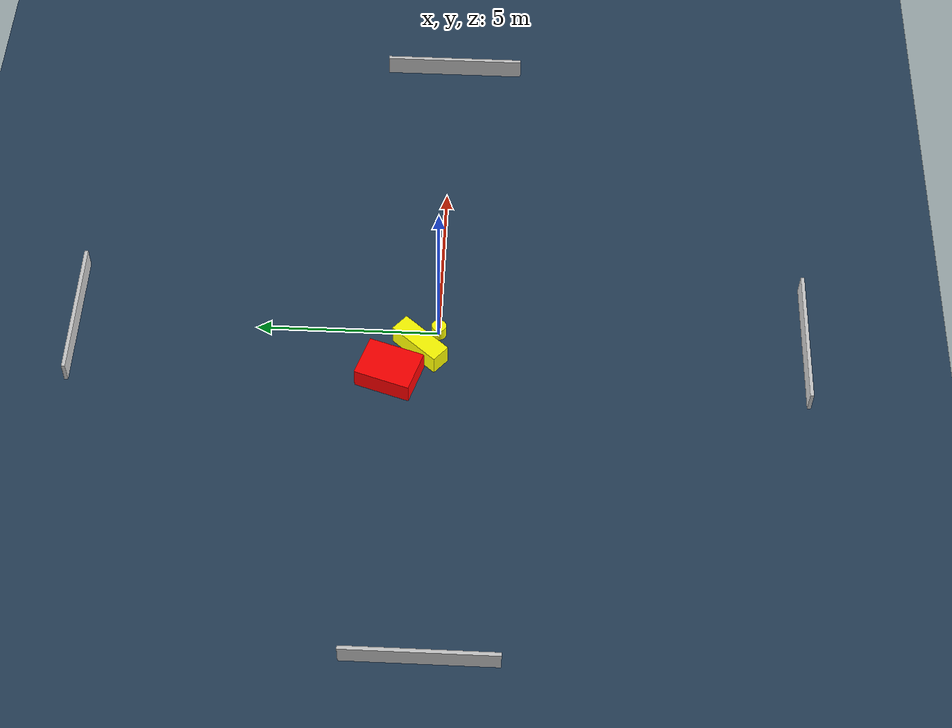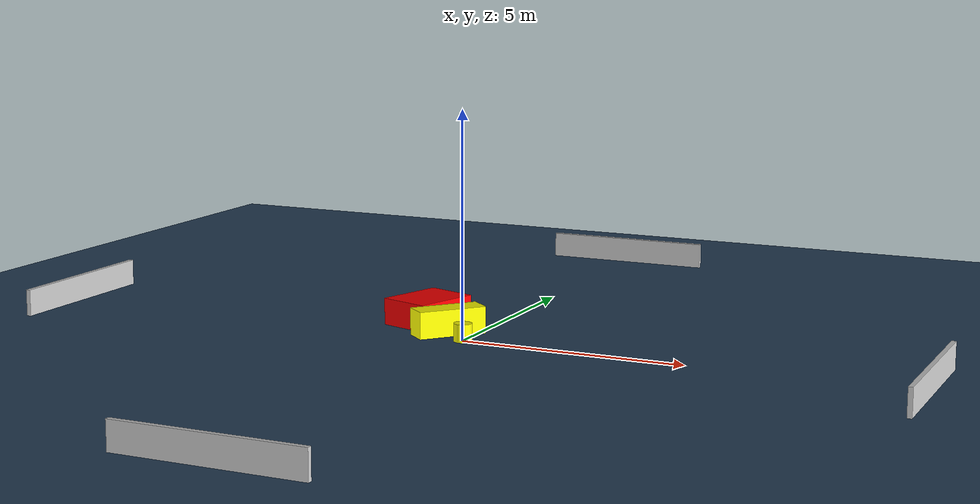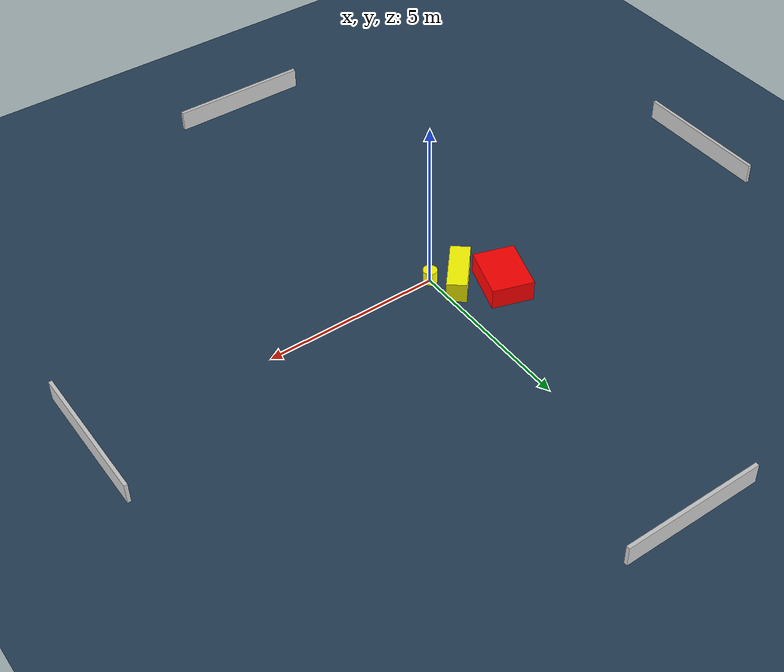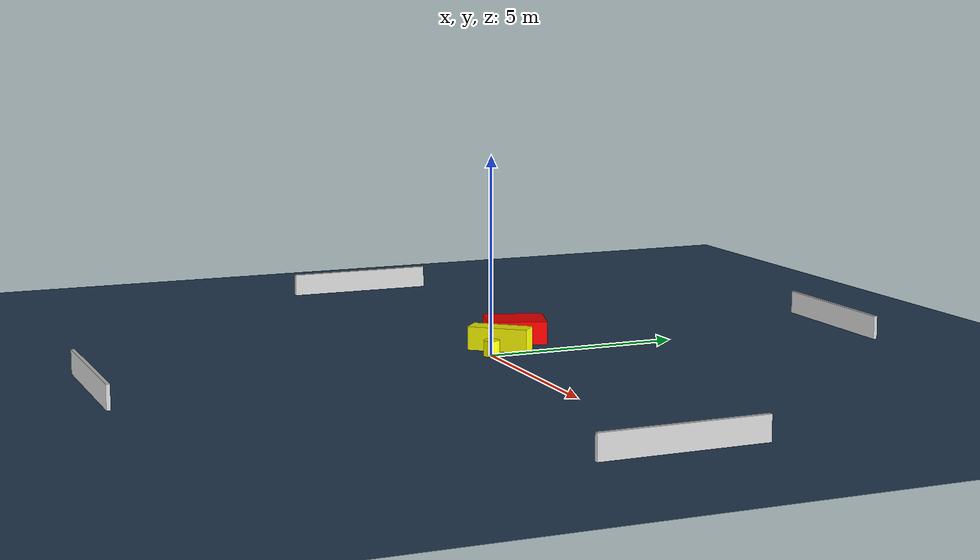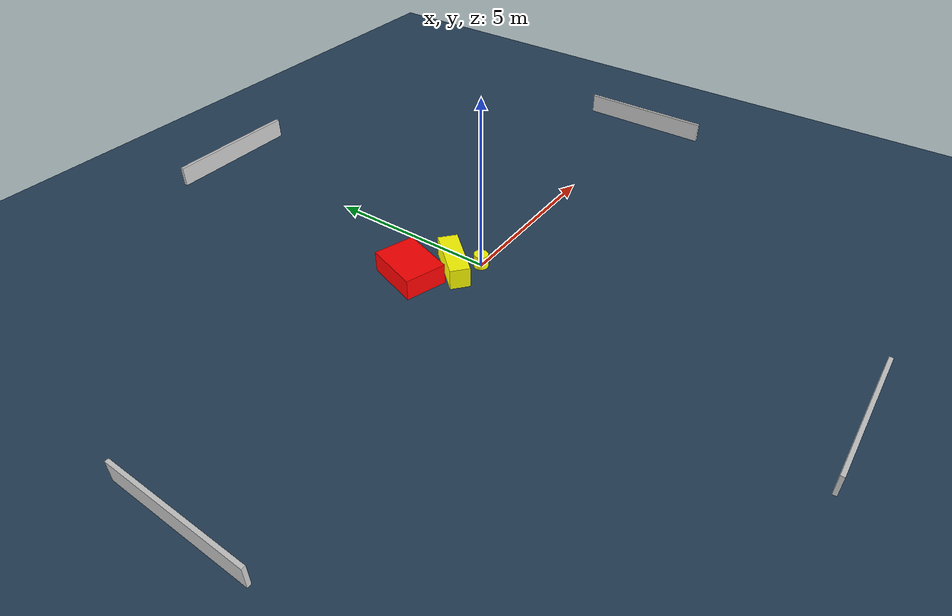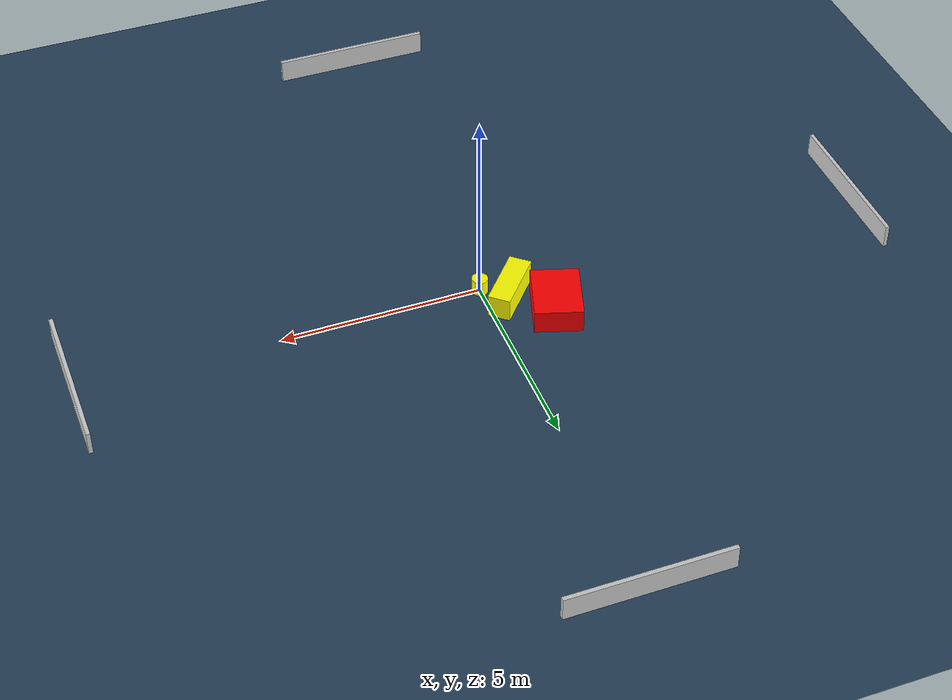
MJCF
<?xml version="1.0" ?>
<mujoco model="generated_environment">
  <option timestep="0.01" integrator="RK4" cone="elliptic"/>
  <default>
    <geom density="1"/>
  </default>
  <asset>
    <texture builtin="gradient" height="3072" name="skybox" rgb1="0.3 0.5 0.7" rgb2="0 0 0" type="skybox" width="512"/>
    <texture builtin="checker" height="300" name="groundplane" rgb1="0.2 0.3 0.4" rgb2="0.1 0.2 0.3" type="2d" width="300"/>
    <material name="groundplane" reflectance="0.2" texrepeat="5 5" texture="groundplane"/>
  </asset>
  <worldbody>
    <light dir="0 0 -1" directional="true" pos="0 0 1.5"/>
    <geom condim="3" friction="0.5 0.005 0.001" material="groundplane" name="floor" pos="0 0 0" size="0 0 0.05" type="plane"/>
    <body name="walls">
      <geom name="wall_1" condim="4" pos="-10.0 0.0 0.3" rgba="0.800000011920929 0.800000011920929 0.800000011920929 1.0" size="0.05 2.0 0.3" type="box"/>
      <geom name="wall_2" condim="4" pos="10.0 0.0 0.3" rgba="0.800000011920929 0.800000011920929 0.800000011920929 1.0" size="0.05 2.0 0.3" type="box"/>
      <geom name="wall_3" condim="4" pos="0.0 -10.0 0.3" rgba="0.800000011920929 0.800000011920929 0.800000011920929 1.0" size="2.0 0.05 0.3" type="box"/>
      <geom name="wall_4" condim="4" pos="0.0 10.0 0.3" rgba="0.800000011920929 0.800000011920929 0.800000011920929 1.0" size="2.0 0.05 0.3" type="box"/>
    </body>
    <body name="robot">
      <joint name="joint_x" type="slide" pos="0 0 0" axis="1 0 0"/>
      <joint name="joint_y" type="slide" pos="0 0 0" axis="0 1 0"/>
      <geom name="robot" type="cylinder" pos="0.0 0.0 0.2" size="0.2 0.2 0.0" mass="5.0" friction="1.0 0.005 0.0001" condim="4" rgba="1.0 1.0 0.0 1.0"/>
    </body>
    <body name="obstacle_1_movable">
      <geom name="obstacle_1_movable" condim="4" pos="-0.5847711432259479 0.4844973051792389 0.3" euler="0 0 319.26748647526364" friction="0.0 0.005 0.001" rgba="1.0 1.0 0.0 1.0" size="0.27723089997491424 0.7765346609054893 0.3" type="box" mass="0.1"/>
      <joint type="free"/>
    </body>
    <body name="obstacle_2_static">
      <geom name="obstacle_2_static" condim="4" pos="-1.4739568289150782 1.2770648729971374 0.3" euler="0 0 162.14206907533745" friction="0.0 0.005 0.001" rgba="1.0 0.0 0.0 1.0" size="0.5883942213287984 0.7780544697416265 0.3" type="box"/>
    </body>
  </worldbody>
  <actuator>
    <motor name="actuator_x" joint="joint_x" gear="1" ctrlrange="-1 1"/>
    <motor name="actuator_y" joint="joint_y" gear="1" ctrlrange="-1 1"/>
  </actuator>
</mujoco>
